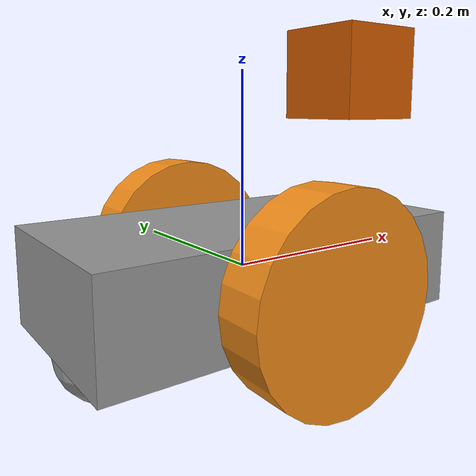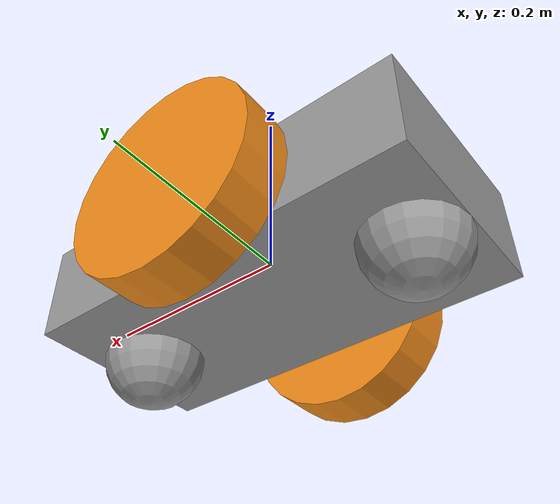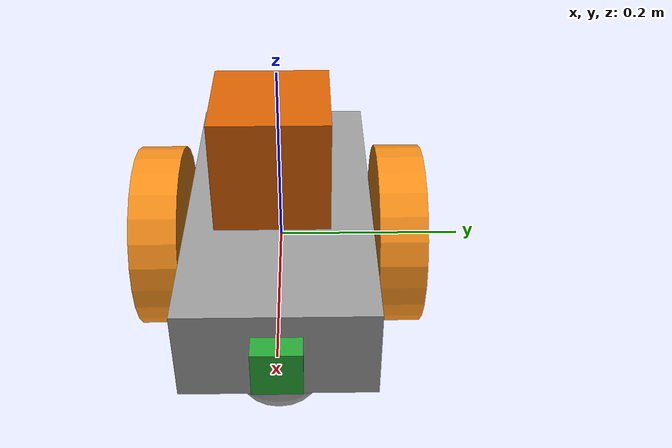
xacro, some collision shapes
<?xml version="1.0"?>

<robot name="udacity_bot" xmlns:xacro="http://www.ros.org/wiki/xacro">

  <xacro:include filename="$(find udacity_bot)/urdf/udacity_bot.gazebo" />

  <link name="robot_footprint"></link>

  <joint name="robot_footprint_joint" type="fixed">
    <origin xyz="0 0 0" rpy="0 0 0" />
    <parent link="robot_footprint"/>
    <child link="chassis" />
  </joint>

  <!-- ===== Chassis ===== -->

  <link name="chassis">
    <pose>0 0 0 0 0 0</pose>

    <inertial>
      <mass value="15.0"/>
      <origin xyz="0 0 0" rpy=" 0 0 0"/>
      <inertia
          ixx="0.1" ixy="0" ixz="0"
          iyy="0.1" iyz="0"
          izz="0.1"
      />
    </inertial>

    <collision name="chassis_collision">
      <origin xyz="0 0 0" rpy=" 0 0 0"/>
      <geometry>
        <box size=".4 .2 .1"/>
      </geometry>
    </collision>

    <visual name="chassis_visual">
      <origin xyz="0 0 0" rpy=" 0 0 0"/>
      <geometry>
        <box size=".4 .2 .1"/>
      </geometry>
    </visual>

    <collision name="back_caster_collision">
      <origin xyz="-0.15 0 -0.05" rpy=" 0 0 0"/>
      <geometry>
        <sphere radius="0.049"/>
      </geometry>
      <surface>
        <friction>
          <ode>
            <mu>0</mu>
            <mu2>0</mu2>
            <slip1>1.0</slip1>
            <slip2>1.0</slip2>
          </ode>
        </friction>
      </surface>
    </collision>

    <visual name="back_caster_visual">
      <origin xyz="-0.15 0 -0.05" rpy=" 0 0 0"/>
      <geometry>
        <sphere radius="0.05"/>
      </geometry>
    </visual>

    <collision name="front_caster_collision">
      <origin xyz="0.15 0 -0.05" rpy=" 0 0 0"/>
      <geometry>
        <sphere radius="0.049"/>
      </geometry>
      <surface>
        <friction>
          <ode>
            <mu>0</mu>
            <mu2>0</mu2>
            <slip1>1.0</slip1>
            <slip2>1.0</slip2>
          </ode>
        </friction>
      </surface>
    </collision>

    <visual name="front_caster_visual">
      <origin xyz="0.15 0 -0.05" rpy=" 0 0 0"/>
      <geometry>
        <sphere radius="0.05"/>
      </geometry>
    </visual>

  </link>

  <!-- ====== Wheels ============= -->

  <link name="left_wheel">
    <inertial>
      <mass value="5.0"/>
      <origin xyz="0.0 0 0" rpy=" 0 0 0"/>
      <inertia
          ixx="0.1" ixy="0" ixz="0"
          iyy="0.1" iyz="0"
          izz="0.1"
      />
    </inertial>
    <collision>
      <origin xyz="0 0 0" rpy="1.5707 0 0"/>
      <geometry>
        <cylinder radius=".1" length="0.05"/>
      </geometry>
    </collision>
    <visual>
      <origin xyz="0 0 0" rpy="1.5707 0 0"/>
      <geometry>
        <cylinder radius="0.1" length="0.05"/>
      </geometry>
    </visual>
  </link>

  <joint name="left_wheel_hinge" type="continuous">
    <origin xyz="0.0 0.13 0" rpy="0 0 0"/>
    <child link="left_wheel"/>
    <parent link="chassis" />
    <axis xyz="0 1 0" rpy="0 0 0" />
    <limit effort="10000" velocity="1000" />
    <joint_properties damping="1.0" friction="1.0" />
  </joint>

  <link name="right_wheel">
    <inertial>
      <mass value="5.0"/>
      <origin xyz="0.0 0 0" rpy=" 0 0 0"/>
      <inertia
          ixx="0.1" ixy="0" ixz="0"
          iyy="0.1" iyz="0"
          izz="0.1"
      />
    </inertial>
    <collision>
      <origin xyz="0 0 0" rpy="1.5707 0 0"/>
      <geometry>
        <cylinder radius=".1" length="0.05"/>
      </geometry>
    </collision>
    <visual>
      <origin xyz="0 0 0" rpy="1.5707 0 0"/>
      <geometry>
        <cylinder radius="0.1" length="0.05"/>
      </geometry>
    </visual>
  </link>

  <joint name="right_wheel_hinge" type="continuous">
    <origin xyz="0.0 -0.13 0" rpy="0 0 0"/>
    <child link="right_wheel"/>
    <parent link="chassis" />
    <axis xyz="0 1 0" rpy="0 0 0" />
    <limit effort="10000" velocity="1000" />
    <joint_properties damping="1.0" friction="1.0" />
  </joint>

  <!-- ====== Camera ============= -->

  <joint name="camera_joint" type="fixed">
    <origin xyz="0.2 0 0" rpy="0 0 0" />
    <child link="camera" />
    <parent link="chassis" />
  </joint>

  <link name="camera">
    <inertial>
      <mass value="0.1"/>
      <origin xyz="0.0 0 0" rpy=" 0 0 0"/>
      <inertia
          ixx="1e-6" ixy="0" ixz="0"
          iyy="1e-6" iyz="0"
          izz="1e-6"
      />
    </inertial>
    <collision>
      <origin xyz="0 0 0" rpy=" 0 0 0"/>
      <geometry>
        <box size="0.05 0.05 0.05" />
      </geometry>
    </collision>
    <visual>
      <origin xyz="0 0 0" rpy=" 0 0 0"/>
      <geometry>
        <box size="0.05 0.05 0.05" />
      </geometry>
    </visual>
  </link>

  <!-- ======= Laser Rangefinder ======= -->
  <joint name="hokuyo_joint" type="fixed">
    <origin xyz=".15 0 .2" />
    <child link="hokuyo" />
    <parent link="chassis" />
  </joint>
  <link name="hokuyo">
    <inertial>
      <mass value="0.1"/>
      <origin xyz="0.0 0 0" rpy=" 0 0 0"/>
      <inertia
          ixx="1e-6" ixy="0" ixz="0"
          iyy="1e-6" iyz="0"
          izz="1e-6"
      />
    </inertial>
    <collision>
      <origin xyz="0 0 0" rpy="0 0 0"/>
      <geometry>
        <box size="0.1 0.1 0.1" />
      </geometry>
    </collision>
    <visual>
      <origin xyz="0 0 -0.025" rpy="0 0 0"/>
      <geometry>
        <mesh filename="package://udacity_bot/meshes/hokuyo.dae" />
      </geometry>
    </visual>
  </link>

</robot>
